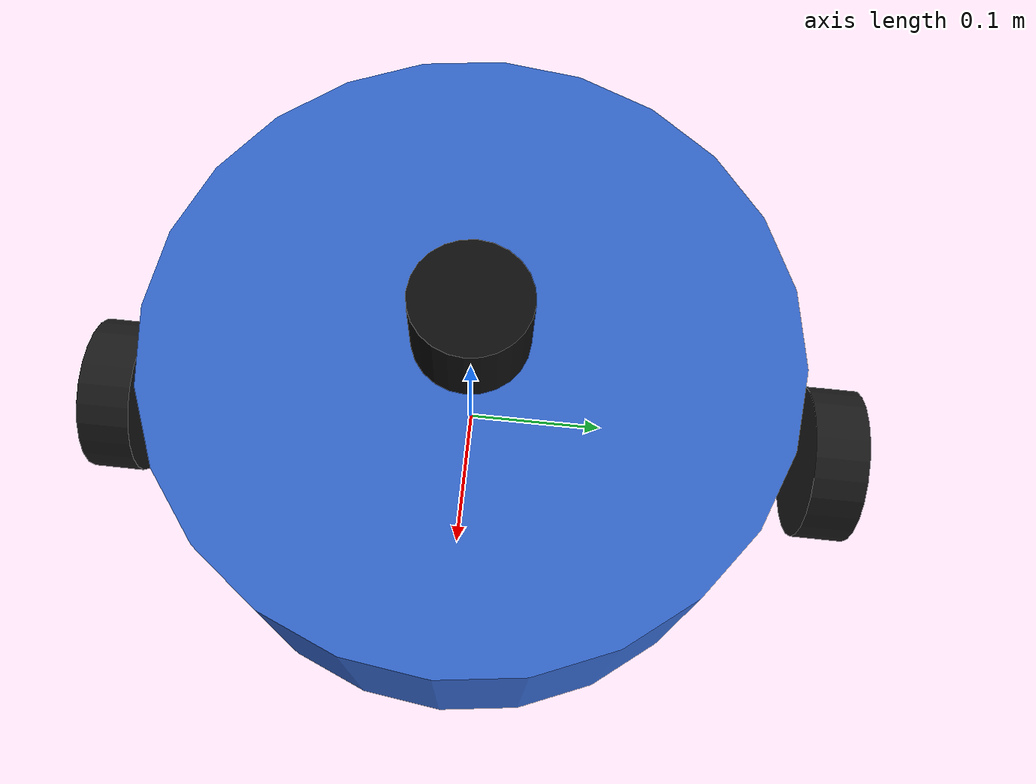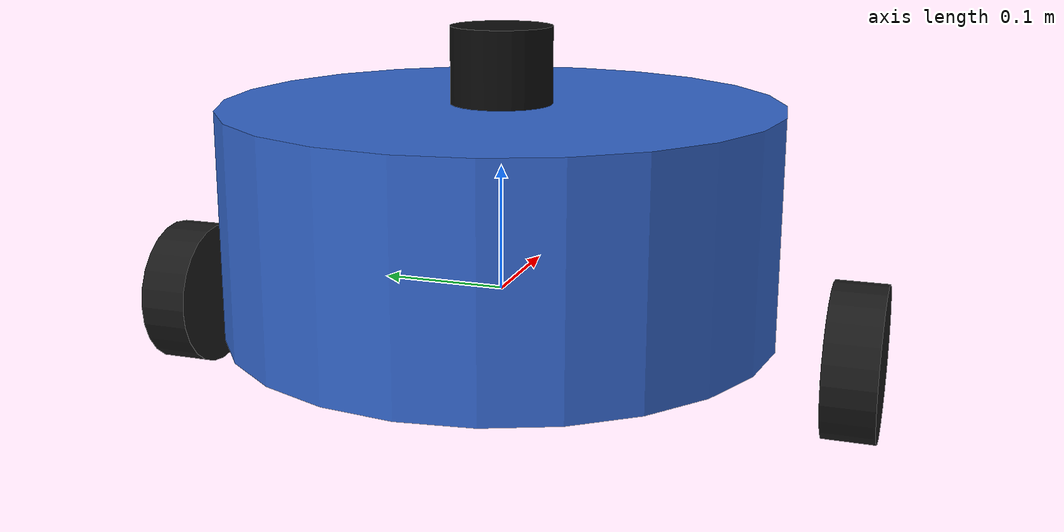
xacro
<?xml version="1.0"?>
<robot name="warehouse_robot" xmlns:xacro="http://www.ros.org/wiki/xacro">

  <!-- ── Properties ── -->
  <xacro:property name="base_radius"  value="0.22"/>
  <xacro:property name="base_height"  value="0.18"/>
  <xacro:property name="wheel_radius" value="0.06"/>
  <xacro:property name="wheel_width"  value="0.04"/>
  <xacro:property name="wheel_sep"    value="0.28"/>
  <xacro:property name="caster_r"     value="0.02"/>

  <!-- BASE FOOTPRINT -->
  <link name="base_footprint"/>
  <joint name="base_footprint_joint" type="fixed">
    <parent link="base_footprint"/>
    <child  link="base_link"/>
    <origin xyz="0 0 ${wheel_radius}" rpy="0 0 0"/>
  </joint>

  <!-- BASE LINK -->
  <link name="base_link">
    <visual>
      <geometry><cylinder radius="${base_radius}" length="${base_height}"/></geometry>
      <material name="blue"><color rgba="0.2 0.4 0.8 1"/></material>
    </visual>
    <collision>
      <geometry><cylinder radius="${base_radius}" length="${base_height}"/></geometry>
    </collision>
    <inertial>
      <mass value="10.0"/>
      <inertia ixx="0.1" ixy="0" ixz="0" iyy="0.1" iyz="0" izz="0.18"/>
    </inertial>
  </link>

  <!-- LEFT WHEEL -->
  <link name="left_wheel">
    <visual>
      <geometry><cylinder radius="${wheel_radius}" length="${wheel_width}"/></geometry>
      <material name="dark"><color rgba="0.1 0.1 0.1 1"/></material>
    </visual>
    <collision>
      <geometry><cylinder radius="${wheel_radius}" length="${wheel_width}"/></geometry>
    </collision>
    <inertial>
      <mass value="0.5"/>
      <inertia ixx="0.001" ixy="0" ixz="0" iyy="0.001" iyz="0" izz="0.001"/>
    </inertial>
  </link>
  <joint name="left_wheel_joint" type="continuous">
    <parent link="base_link"/>
    <child  link="left_wheel"/>
    <origin xyz="0 ${wheel_sep} ${-base_height/2}" rpy="${pi/2} 0 0"/>
    <axis xyz="0 0 1"/>
  </joint>

  <!-- RIGHT WHEEL -->
  <link name="right_wheel">
    <visual>
      <geometry><cylinder radius="${wheel_radius}" length="${wheel_width}"/></geometry>
      <material name="dark"/>
    </visual>
    <collision>
      <geometry><cylinder radius="${wheel_radius}" length="${wheel_width}"/></geometry>
    </collision>
    <inertial>
      <mass value="0.5"/>
      <inertia ixx="0.001" ixy="0" ixz="0" iyy="0.001" iyz="0" izz="0.001"/>
    </inertial>
  </link>
  <joint name="right_wheel_joint" type="continuous">
    <parent link="base_link"/>
    <child  link="right_wheel"/>
    <origin xyz="0 ${-wheel_sep} ${-base_height/2}" rpy="${pi/2} 0 0"/>
    <axis xyz="0 0 1"/>
  </joint>

  <!-- CASTER WHEEL -->
  <link name="caster_wheel">
    <visual>
      <geometry><sphere radius="${caster_r}"/></geometry>
      <material name="dark"/>
    </visual>
    <collision>
      <geometry><sphere radius="${caster_r}"/></geometry>
    </collision>
    <inertial>
      <mass value="0.1"/>
      <inertia ixx="0.0001" ixy="0" ixz="0" iyy="0.0001" iyz="0" izz="0.0001"/>
    </inertial>
  </link>
  <joint name="caster_joint" type="fixed">
    <parent link="base_link"/>
    <child  link="caster_wheel"/>
    <origin xyz="${base_radius - caster_r} 0 ${-(base_height/2 + caster_r - wheel_radius)}" rpy="0 0 0"/>
  </joint>

  <!-- LIDAR LINK -->
  <link name="lidar_link">
    <visual>
      <geometry><cylinder radius="0.04" length="0.06"/></geometry>
      <material name="black"><color rgba="0.05 0.05 0.05 1"/></material>
    </visual>
    <collision>
      <geometry><cylinder radius="0.04" length="0.06"/></geometry>
    </collision>
    <inertial>
      <mass value="0.2"/>
      <inertia ixx="0.0001" ixy="0" ixz="0" iyy="0.0001" iyz="0" izz="0.0001"/>
    </inertial>
  </link>
  <joint name="lidar_joint" type="fixed">
    <parent link="base_link"/>
    <child  link="lidar_link"/>
    <origin xyz="0 0 ${base_height/2 + 0.03}" rpy="0 0 0"/>
  </joint>

  <!-- GAZEBO: Differential drive plugin -->
  <gazebo>
    <plugin filename="gz-sim-diff-drive-system"
            name="gz::sim::systems::DiffDrive">
      <left_joint>left_wheel_joint</left_joint>
      <right_joint>right_wheel_joint</right_joint>
      <wheel_separation>${wheel_sep * 2}</wheel_separation>
      <wheel_radius>${wheel_radius}</wheel_radius>
      <odom_publish_frequency>20</odom_publish_frequency>
      <topic>cmd_vel</topic>
      <odom_topic>odom</odom_topic>
      <frame_id>odom</frame_id>
      <child_frame_id>base_footprint</child_frame_id>
    </plugin>
  </gazebo>

  <!-- GAZEBO: Joint state publisher -->
  <gazebo>
    <plugin filename="gz-sim-joint-state-publisher-system"
            name="gz::sim::systems::JointStatePublisher"/>
  </gazebo>

  <!-- GAZEBO: 2D LiDAR sensor -->
  <gazebo reference="lidar_link">
    <sensor name="lidar" type="gpu_lidar">
      <update_rate>10</update_rate>
      <topic>scan</topic>
      <gz_frame_id>lidar_link</gz_frame_id>
      <lidar>
        <scan>
          <horizontal>
            <samples>360</samples>
            <resolution>1</resolution>
            <min_angle>-3.14159</min_angle>
            <max_angle>3.14159</max_angle>
          </horizontal>
        </scan>
        <range>
          <min>0.12</min>
          <max>10.0</max>
          <resolution>0.01</resolution>
        </range>
        <noise>
          <type>gaussian</type>
          <mean>0.0</mean>
          <stddev>0.01</stddev>
        </noise>
      </lidar>
    </sensor>
  </gazebo>

</robot>
